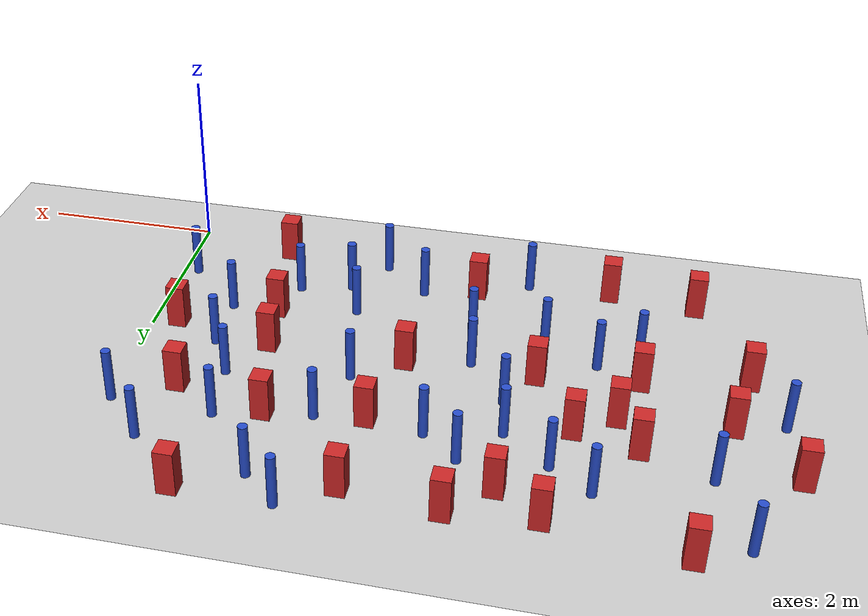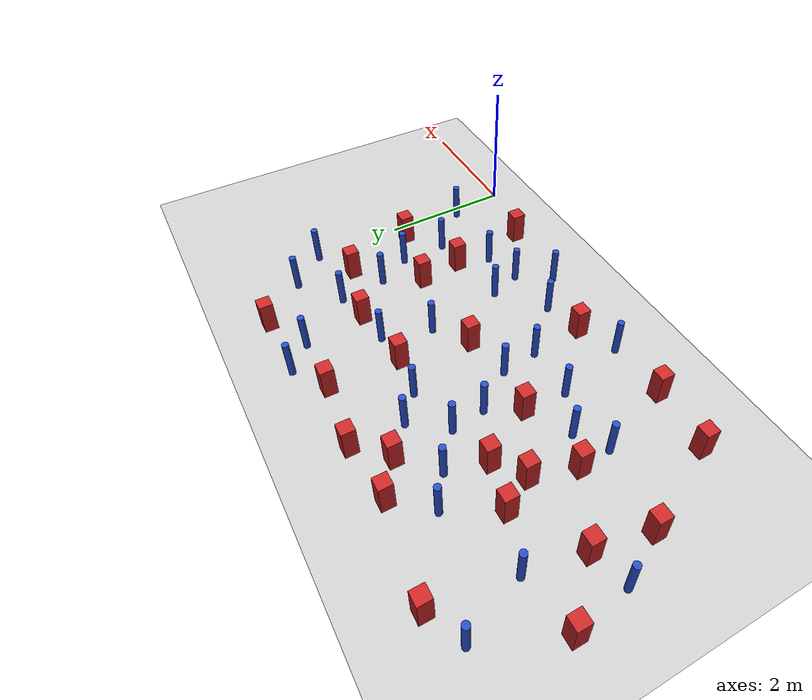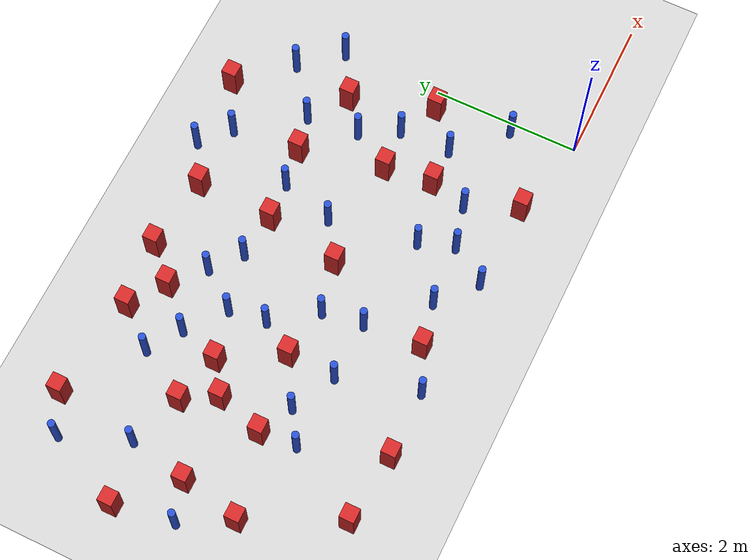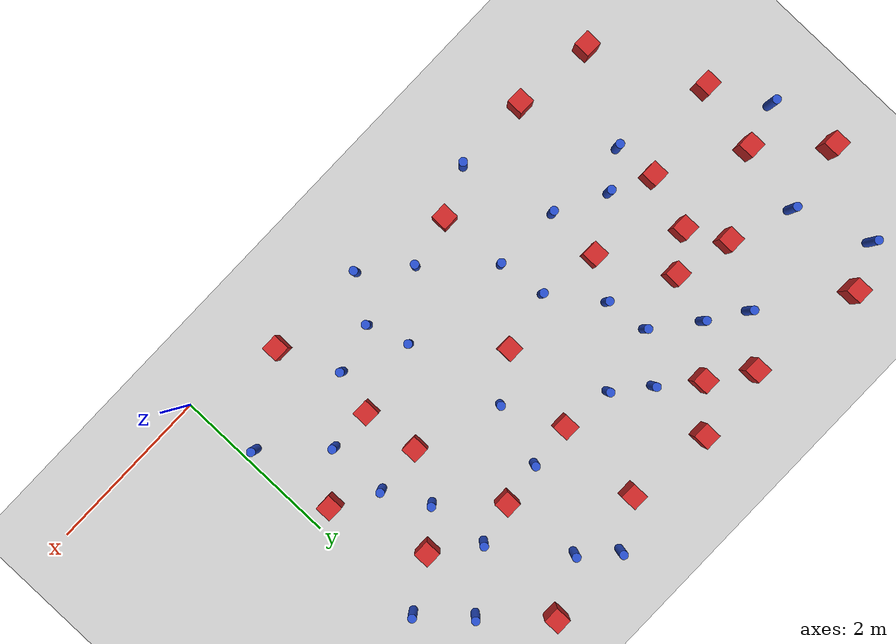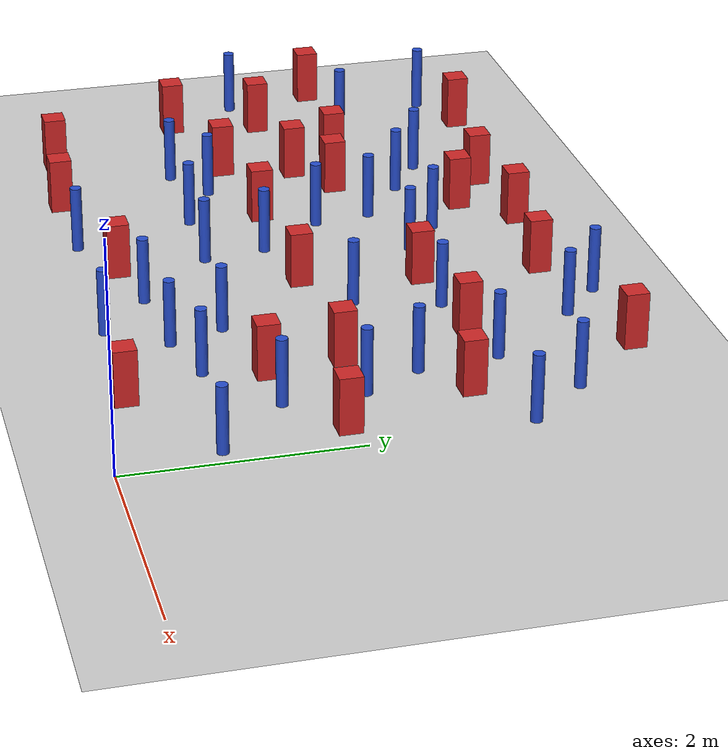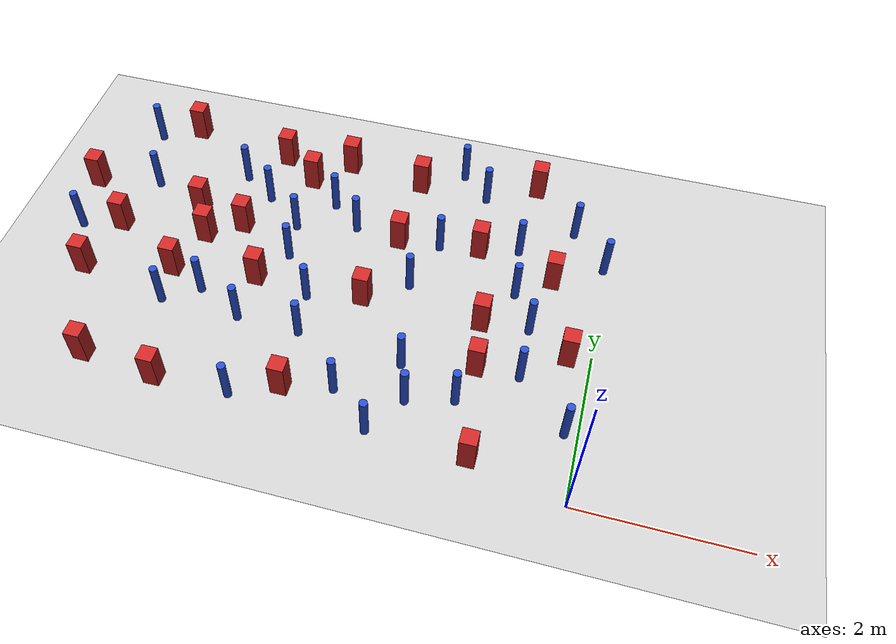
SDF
<sdf version="1.6">
 <world name="default">
  <model name="ground_plane">
   <static>1</static>
   <link name="link">
    <collision name="collision">
     <geometry><plane><normal>0 0 1</normal><size>100 100</size></plane></geometry>
     <surface><friction><ode><mu>100</mu><mu2>50</mu2></ode></friction></surface>
    </collision>
    <visual name="visual">
     <cast_shadows>0</cast_shadows>
     <geometry><plane><normal>0 0 1</normal><size>100 100</size></plane></geometry>
     <material>
      <ambient>1.0 1.0 1.0 1.0</ambient>
      <diffuse>0.8 0.8 0.8 1.0</diffuse>
      <specular>0.01 0.01 0.01 1.000000</specular>
     </material>
    </visual>
   </link>
  </model>
  <model name="pole_obstacle0">
   <static>true</static>
   <pose>-3.31218589467 3.24684789584 7.38925637345e-09 -8.47170692798e-08 1.24976764939e-08 -1.74513093025e-07</pose>
   <link name="link">
    <pose>0 0 0.3 0 -0 0</pose>
    <inertial>
     <mass>1</mass>
     <inertia><ixx>0.145833</ixx><ixy>0</ixy><ixz>0</ixz><iyy>0.145833</iyy><iyz>0</iyz><izz>0.125</izz></inertia>
    </inertial>
    <collision name="collision">
     <geometry><cylinder><radius>0.05</radius><length>.6</length></cylinder></geometry>
    </collision>
    <visual name="visual">
     <geometry><cylinder><radius>0.05</radius><length>.6</length></cylinder></geometry>
     <material>
      <script><name>Gazebo/Blue</name><uri>file://media/materials/scripts/gazebo.material</uri></script>
     </material>
    </visual>
   </link>
  </model>
  <model name="square_post_obstacle2">
   <static>true</static>
   <pose>-4.12529514285 3.92472908485 1.91545236811e-07 -7.35059704564e-06 1.12565212e-07 2.39332434364e-05</pose>
   <link name="link">
    <pose>0 0 0.25 0 -0 0</pose>
    <inertial>
     <mass>100</mass>
     <inertia>
      <ixx>0.166667</ixx>
      <ixy>0</ixy>
      <ixz>0</ixz>
      <iyy>0.166667</iyy>
      <iyz>0</iyz>
      <izz>0.166667</izz>
     </inertia>
    </inertial>
    <collision name="collision"><geometry><box><size>.2 .2 .5</size></box></geometry></collision>
    <visual name="visual">
     <geometry><box><size>.2 .2 .5</size></box></geometry>
     <material>
      <script><name>Gazebo/Red</name><uri>file://media/materials/scripts/gazebo.material</uri></script>
     </material>
    </visual>
   </link>
  </model>
  <model name="pole_obstacle9">
   <static>true</static>
   <pose>-2.39047537825 2.48837726105 7.38925637345e-09 -8.47170692798e-08 1.24976764939e-08 -1.74513093025e-07</pose>
   <link name="link">
    <pose>0 0 0.3 0 -0 0</pose>
    <inertial>
     <mass>1</mass>
     <inertia><ixx>0.145833</ixx><ixy>0</ixy><ixz>0</ixz><iyy>0.145833</iyy><iyz>0</iyz><izz>0.125</izz></inertia>
    </inertial>
    <collision name="collision">
     <geometry><cylinder><radius>0.05</radius><length>.6</length></cylinder></geometry>
    </collision>
    <visual name="visual">
     <geometry><cylinder><radius>0.05</radius><length>.6</length></cylinder></geometry>
     <material>
      <script><name>Gazebo/Blue</name><uri>file://media/materials/scripts/gazebo.material</uri></script>
     </material>
    </visual>
   </link>
  </model>
  <model name="pole_obstacle16">
   <static>true</static>
   <pose>-2.01565378266 0.821097180854 7.38925637345e-09 -8.47170692799e-08 1.2497676506e-08 -1.74513093019e-07</pose>
   <link name="link">
    <pose>0 0 0.3 0 -0 0</pose>
    <inertial>
     <mass>1</mass>
     <inertia><ixx>0.145833</ixx><ixy>0</ixy><ixz>0</ixz><iyy>0.145833</iyy><iyz>0</iyz><izz>0.125</izz></inertia>
    </inertial>
    <collision name="collision">
     <geometry><cylinder><radius>0.05</radius><length>.6</length></cylinder></geometry>
    </collision>
    <visual name="visual">
     <geometry><cylinder><radius>0.05</radius><length>.6</length></cylinder></geometry>
     <material>
      <script><name>Gazebo/Blue</name><uri>file://media/materials/scripts/gazebo.material</uri></script>
     </material>
    </visual>
   </link>
  </model>
  <model name="square_post_obstacle31">
   <static>true</static>
   <pose>-4.93894189318 0.361426114888 1.91545236811e-07 -7.35059704564e-06 1.12565212e-07 2.39332434364e-05</pose>
   <link name="link">
    <pose>0 0 0.25 0 -0 0</pose>
    <inertial>
     <mass>100</mass>
     <inertia>
      <ixx>0.166667</ixx>
      <ixy>0</ixy>
      <ixz>0</ixz>
      <iyy>0.166667</iyy>
      <iyz>0</iyz>
      <izz>0.166667</izz>
     </inertia>
    </inertial>
    <collision name="collision"><geometry><box><size>.2 .2 .5</size></box></geometry></collision>
    <visual name="visual">
     <geometry><box><size>.2 .2 .5</size></box></geometry>
     <material>
      <script><name>Gazebo/Red</name><uri>file://media/materials/scripts/gazebo.material</uri></script>
     </material>
    </visual>
   </link>
  </model>
  <model name="pole_obstacle29">
   <static>true</static>
   <pose>-1.16174425688 3.40581016693 7.38925637345e-09 -8.47170692799e-08 1.24976765053e-08 -1.74513093017e-07</pose>
   <link name="link">
    <pose>0 0 0.3 0 -0 0</pose>
    <inertial>
     <mass>1</mass>
     <inertia><ixx>0.145833</ixx><ixy>0</ixy><ixz>0</ixz><iyy>0.145833</iyy><iyz>0</iyz><izz>0.125</izz></inertia>
    </inertial>
    <collision name="collision">
     <geometry><cylinder><radius>0.05</radius><length>.6</length></cylinder></geometry>
    </collision>
    <visual name="visual">
     <geometry><cylinder><radius>0.05</radius><length>.6</length></cylinder></geometry>
     <material>
      <script><name>Gazebo/Blue</name><uri>file://media/materials/scripts/gazebo.material</uri></script>
     </material>
    </visual>
   </link>
  </model>
  <model name="square_post_obstacle35">
   <static>true</static>
   <pose>-4.29749711963 2.10188516011 1.91545236811e-07 -7.35059704564e-06 1.12565212e-07 2.39332434364e-05</pose>
   <link name="link">
    <pose>0 0 0.25 0 -0 0</pose>
    <inertial>
     <mass>100</mass>
     <inertia>
      <ixx>0.166667</ixx>
      <ixy>0</ixy>
      <ixz>0</ixz>
      <iyy>0.166667</iyy>
      <iyz>0</iyz>
      <izz>0.166667</izz>
     </inertia>
    </inertial>
    <collision name="collision"><geometry><box><size>.2 .2 .5</size></box></geometry></collision>
    <visual name="visual">
     <geometry><box><size>.2 .2 .5</size></box></geometry>
     <material>
      <script><name>Gazebo/Red</name><uri>file://media/materials/scripts/gazebo.material</uri></script>
     </material>
    </visual>
   </link>
  </model>
  <model name="pole_obstacle35">
   <static>true</static>
   <pose>-4.01944956505 0.370671614496 7.38925637345e-09 -8.47170692799e-08 1.24976765016e-08 -1.74513093019e-07</pose>
   <link name="link">
    <pose>0 0 0.3 0 -0 0</pose>
    <inertial>
     <mass>1</mass>
     <inertia><ixx>0.145833</ixx><ixy>0</ixy><ixz>0</ixz><iyy>0.145833</iyy><iyz>0</iyz><izz>0.125</izz></inertia>
    </inertial>
    <collision name="collision">
     <geometry><cylinder><radius>0.05</radius><length>.6</length></cylinder></geometry>
    </collision>
    <visual name="visual">
     <geometry><cylinder><radius>0.05</radius><length>.6</length></cylinder></geometry>
     <material>
      <script><name>Gazebo/Blue</name><uri>file://media/materials/scripts/gazebo.material</uri></script>
     </material>
    </visual>
   </link>
  </model>
  <model name="pole_obstacle37">
   <static>true</static>
   <pose>-3.59396829562 1.98259510456 7.38925637345e-09 -8.47170692799e-08 1.24976764986e-08 -1.74513093023e-07</pose>
   <link name="link">
    <pose>0 0 0.3 0 -0 0</pose>
    <inertial>
     <mass>1</mass>
     <inertia><ixx>0.145833</ixx><ixy>0</ixy><ixz>0</ixz><iyy>0.145833</iyy><iyz>0</iyz><izz>0.125</izz></inertia>
    </inertial>
    <collision name="collision">
     <geometry><cylinder><radius>0.05</radius><length>.6</length></cylinder></geometry>
    </collision>
    <visual name="visual">
     <geometry><cylinder><radius>0.05</radius><length>.6</length></cylinder></geometry>
     <material>
      <script><name>Gazebo/Blue</name><uri>file://media/materials/scripts/gazebo.material</uri></script>
     </material>
    </visual>
   </link>
  </model>
  <model name="square_post_obstacle38">
   <static>true</static>
   <pose>-5.18107999283 2.6121680346 1.91545236811e-07 -7.35059704564e-06 1.12565212e-07 2.39332434364e-05</pose>
   <link name="link">
    <pose>0 0 0.25 0 -0 0</pose>
    <inertial>
     <mass>100</mass>
     <inertia>
      <ixx>0.166667</ixx>
      <ixy>0</ixy>
      <ixz>0</ixz>
      <iyy>0.166667</iyy>
      <iyz>0</iyz>
      <izz>0.166667</izz>
     </inertia>
    </inertial>
    <collision name="collision"><geometry><box><size>.2 .2 .5</size></box></geometry></collision>
    <visual name="visual">
     <geometry><box><size>.2 .2 .5</size></box></geometry>
     <material>
      <script><name>Gazebo/Red</name><uri>file://media/materials/scripts/gazebo.material</uri></script>
     </material>
    </visual>
   </link>
  </model>
  <model name="square_post_obstacle43">
   <static>true</static>
   <pose>-1.66188375702 3.28541708016 1.91545236811e-07 -7.35059704564e-06 1.12565212e-07 2.39332434364e-05</pose>
   <link name="link">
    <pose>0 0 0.25 0 -0 0</pose>
    <inertial>
     <mass>100</mass>
     <inertia>
      <ixx>0.166667</ixx>
      <ixy>0</ixy>
      <ixz>0</ixz>
      <iyy>0.166667</iyy>
      <iyz>0</iyz>
      <izz>0.166667</izz>
     </inertia>
    </inertial>
    <collision name="collision"><geometry><box><size>.2 .2 .5</size></box></geometry></collision>
    <visual name="visual">
     <geometry><box><size>.2 .2 .5</size></box></geometry>
     <material>
      <script><name>Gazebo/Red</name><uri>file://media/materials/scripts/gazebo.material</uri></script>
     </material>
    </visual>
   </link>
  </model>
  <model name="pole_obstacle47">
   <static>true</static>
   <pose>-1.76505817171 4.21186184875 7.38925637345e-09 -8.47170692799e-08 1.24976765033e-08 -1.74513093018e-07</pose>
   <link name="link">
    <pose>0 0 0.3 0 -0 0</pose>
    <inertial>
     <mass>1</mass>
     <inertia><ixx>0.145833</ixx><ixy>0</ixy><ixz>0</ixz><iyy>0.145833</iyy><iyz>0</iyz><izz>0.125</izz></inertia>
    </inertial>
    <collision name="collision">
     <geometry><cylinder><radius>0.05</radius><length>.6</length></cylinder></geometry>
    </collision>
    <visual name="visual">
     <geometry><cylinder><radius>0.05</radius><length>.6</length></cylinder></geometry>
     <material>
      <script><name>Gazebo/Blue</name><uri>file://media/materials/scripts/gazebo.material</uri></script>
     </material>
    </visual>
   </link>
  </model>
  <model name="square_post_obstacle49">
   <static>true</static>
   <pose>-4.59974025858 4.25674580251 1.91545236811e-07 -7.35059704564e-06 1.12565212e-07 2.39332434364e-05</pose>
   <link name="link">
    <pose>0 0 0.25 0 -0 0</pose>
    <inertial>
     <mass>100</mass>
     <inertia>
      <ixx>0.166667</ixx>
      <ixy>0</ixy>
      <ixz>0</ixz>
      <iyy>0.166667</iyy>
      <iyz>0</iyz>
      <izz>0.166667</izz>
     </inertia>
    </inertial>
    <collision name="collision"><geometry><box><size>.2 .2 .5</size></box></geometry></collision>
    <visual name="visual">
     <geometry><box><size>.2 .2 .5</size></box></geometry>
     <material>
      <script><name>Gazebo/Red</name><uri>file://media/materials/scripts/gazebo.material</uri></script>
     </material>
    </visual>
   </link>
  </model>
  <model name="square_post_obstacle51">
   <static>true</static>
   <pose>-3.45675100324 0.629196716824 1.91545236811e-07 -7.35059704564e-06 1.12565212e-07 2.39332434364e-05</pose>
   <link name="link">
    <pose>0 0 0.25 0 -0 0</pose>
    <inertial>
     <mass>100</mass>
     <inertia>
      <ixx>0.166667</ixx>
      <ixy>0</ixy>
      <ixz>0</ixz>
      <iyy>0.166667</iyy>
      <iyz>0</iyz>
      <izz>0.166667</izz>
     </inertia>
    </inertial>
    <collision name="collision"><geometry><box><size>.2 .2 .5</size></box></geometry></collision>
    <visual name="visual">
     <geometry><box><size>.2 .2 .5</size></box></geometry>
     <material>
      <script><name>Gazebo/Red</name><uri>file://media/materials/scripts/gazebo.material</uri></script>
     </material>
    </visual>
   </link>
  </model>
  <model name="pole_obstacle51">
   <static>true</static>
   <pose>-4.31526105407 1.44752254884 7.38925637345e-09 -8.471706928e-08 1.24976765134e-08 -1.74513093015e-07</pose>
   <link name="link">
    <pose>0 0 0.3 0 -0 0</pose>
    <inertial>
     <mass>1</mass>
     <inertia><ixx>0.145833</ixx><ixy>0</ixy><ixz>0</ixz><iyy>0.145833</iyy><iyz>0</iyz><izz>0.125</izz></inertia>
    </inertial>
    <collision name="collision">
     <geometry><cylinder><radius>0.05</radius><length>.6</length></cylinder></geometry>
    </collision>
    <visual name="visual">
     <geometry><cylinder><radius>0.05</radius><length>.6</length></cylinder></geometry>
     <material>
      <script><name>Gazebo/Blue</name><uri>file://media/materials/scripts/gazebo.material</uri></script>
     </material>
    </visual>
   </link>
  </model>
  <model name="pole_obstacle52">
   <static>true</static>
   <pose>-2.17546158539 3.21325992226 7.38925637345e-09 -8.47170692798e-08 1.24976764939e-08 -1.74513093025e-07</pose>
   <link name="link">
    <pose>0 0 0.3 0 -0 0</pose>
    <inertial>
     <mass>1</mass>
     <inertia><ixx>0.145833</ixx><ixy>0</ixy><ixz>0</ixz><iyy>0.145833</iyy><iyz>0</iyz><izz>0.125</izz></inertia>
    </inertial>
    <collision name="collision">
     <geometry><cylinder><radius>0.05</radius><length>.6</length></cylinder></geometry>
    </collision>
    <visual name="visual">
     <geometry><cylinder><radius>0.05</radius><length>.6</length></cylinder></geometry>
     <material>
      <script><name>Gazebo/Blue</name><uri>file://media/materials/scripts/gazebo.material</uri></script>
     </material>
    </visual>
   </link>
  </model>
  <model name="pole_obstacle57">
   <static>true</static>
   <pose>-4.02045825961 2.5595097581 7.38925637345e-09 -8.47170692798e-08 1.24976764953e-08 -1.74513093023e-07</pose>
   <link name="link">
    <pose>0 0 0.3 0 -0 0</pose>
    <inertial>
     <mass>1</mass>
     <inertia><ixx>0.145833</ixx><ixy>0</ixy><ixz>0</ixz><iyy>0.145833</iyy><iyz>0</iyz><izz>0.125</izz></inertia>
    </inertial>
    <collision name="collision">
     <geometry><cylinder><radius>0.05</radius><length>.6</length></cylinder></geometry>
    </collision>
    <visual name="visual">
     <geometry><cylinder><radius>0.05</radius><length>.6</length></cylinder></geometry>
     <material>
      <script><name>Gazebo/Blue</name><uri>file://media/materials/scripts/gazebo.material</uri></script>
     </material>
    </visual>
   </link>
  </model>
  <model name="pole_obstacle58">
   <static>true</static>
   <pose>-6.50624612397 4.21218986846 7.38925637345e-09 -8.47170692796e-08 1.24976764786e-08 -1.74513093032e-07</pose>
   <link name="link">
    <pose>0 0 0.3 0 -0 0</pose>
    <inertial>
     <mass>1</mass>
     <inertia><ixx>0.145833</ixx><ixy>0</ixy><ixz>0</ixz><iyy>0.145833</iyy><iyz>0</iyz><izz>0.125</izz></inertia>
    </inertial>
    <collision name="collision">
     <geometry><cylinder><radius>0.05</radius><length>.6</length></cylinder></geometry>
    </collision>
    <visual name="visual">
     <geometry><cylinder><radius>0.05</radius><length>.6</length></cylinder></geometry>
     <material>
      <script><name>Gazebo/Blue</name><uri>file://media/materials/scripts/gazebo.material</uri></script>
     </material>
    </visual>
   </link>
  </model>
  <model name="square_post_obstacle65">
   <static>true</static>
   <pose>-2.67300093163 4.2290771013 1.91545236811e-07 -7.35059704564e-06 1.12565212e-07 2.39332434364e-05</pose>
   <link name="link">
    <pose>0 0 0.25 0 -0 0</pose>
    <inertial>
     <mass>100</mass>
     <inertia>
      <ixx>0.166667</ixx>
      <ixy>0</ixy>
      <ixz>0</ixz>
      <iyy>0.166667</iyy>
      <iyz>0</iyz>
      <izz>0.166667</izz>
     </inertia>
    </inertial>
    <collision name="collision"><geometry><box><size>.2 .2 .5</size></box></geometry></collision>
    <visual name="visual">
     <geometry><box><size>.2 .2 .5</size></box></geometry>
     <material>
      <script><name>Gazebo/Red</name><uri>file://media/materials/scripts/gazebo.material</uri></script>
     </material>
    </visual>
   </link>
  </model>
  <model name="square_post_obstacle68">
   <static>true</static>
   <pose>-6.98262836582 3.17246961857 1.91545236811e-07 -7.35059704564e-06 1.12565212e-07 2.39332434364e-05</pose>
   <link name="link">
    <pose>0 0 0.25 0 -0 0</pose>
    <inertial>
     <mass>100</mass>
     <inertia>
      <ixx>0.166667</ixx>
      <ixy>0</ixy>
      <ixz>0</ixz>
      <iyy>0.166667</iyy>
      <iyz>0</iyz>
      <izz>0.166667</izz>
     </inertia>
    </inertial>
    <collision name="collision"><geometry><box><size>.2 .2 .5</size></box></geometry></collision>
    <visual name="visual">
     <geometry><box><size>.2 .2 .5</size></box></geometry>
     <material>
      <script><name>Gazebo/Red</name><uri>file://media/materials/scripts/gazebo.material</uri></script>
     </material>
    </visual>
   </link>
  </model>
  <model name="pole_obstacle76">
   <static>true</static>
   <pose>-3.69954397331 3.56758947971 7.38925637345e-09 -8.47170692798e-08 1.24976764939e-08 -1.74513093025e-07</pose>
   <link name="link">
    <pose>0 0 0.3 0 -0 0</pose>
    <inertial>
     <mass>1</mass>
     <inertia><ixx>0.145833</ixx><ixy>0</ixy><ixz>0</ixz><iyy>0.145833</iyy><iyz>0</iyz><izz>0.125</izz></inertia>
    </inertial>
    <collision name="collision">
     <geometry><cylinder><radius>0.05</radius><length>.6</length></cylinder></geometry>
    </collision>
    <visual name="visual">
     <geometry><cylinder><radius>0.05</radius><length>.6</length></cylinder></geometry>
     <material>
      <script><name>Gazebo/Blue</name><uri>file://media/materials/scripts/gazebo.material</uri></script>
     </material>
    </visual>
   </link>
  </model>
  <model name="pole_obstacle78">
   <static>true</static>
   <pose>-4.90975450188 1.74306706423 7.38925637345e-09 -8.471706928e-08 1.24976765134e-08 -1.74513093015e-07</pose>
   <link name="link">
    <pose>0 0 0.3 0 -0 0</pose>
    <inertial>
     <mass>1</mass>
     <inertia><ixx>0.145833</ixx><ixy>0</ixy><ixz>0</ixz><iyy>0.145833</iyy><iyz>0</iyz><izz>0.125</izz></inertia>
    </inertial>
    <collision name="collision">
     <geometry><cylinder><radius>0.05</radius><length>.6</length></cylinder></geometry>
    </collision>
    <visual name="visual">
     <geometry><cylinder><radius>0.05</radius><length>.6</length></cylinder></geometry>
     <material>
      <script><name>Gazebo/Blue</name><uri>file://media/materials/scripts/gazebo.material</uri></script>
     </material>
    </visual>
   </link>
  </model>
  <model name="pole_obstacle99">
   <static>true</static>
   <pose>-1.44975301451 0.973764844431 7.38925637345e-09 -8.47170692799e-08 1.24976765135e-08 -1.74513093013e-07</pose>
   <link name="link">
    <pose>0 0 0.3 0 -0 0</pose>
    <inertial>
     <mass>1</mass>
     <inertia><ixx>0.145833</ixx><ixy>0</ixy><ixz>0</ixz><iyy>0.145833</iyy><iyz>0</iyz><izz>0.125</izz></inertia>
    </inertial>
    <collision name="collision">
     <geometry><cylinder><radius>0.05</radius><length>.6</length></cylinder></geometry>
    </collision>
    <visual name="visual">
     <geometry><cylinder><radius>0.05</radius><length>.6</length></cylinder></geometry>
     <material>
      <script><name>Gazebo/Blue</name><uri>file://media/materials/scripts/gazebo.material</uri></script>
     </material>
    </visual>
   </link>
  </model>
  <model name="pole_obstacle101">
   <static>true</static>
   <pose>-6.84942148549 2.36285147451 7.38925637345e-09 -8.47170692798e-08 1.24976764937e-08 -1.74513093023e-07</pose>
   <link name="link">
    <pose>0 0 0.3 0 -0 0</pose>
    <inertial>
     <mass>1</mass>
     <inertia><ixx>0.145833</ixx><ixy>0</ixy><ixz>0</ixz><iyy>0.145833</iyy><iyz>0</iyz><izz>0.125</izz></inertia>
    </inertial>
    <collision name="collision">
     <geometry><cylinder><radius>0.05</radius><length>.6</length></cylinder></geometry>
    </collision>
    <visual name="visual">
     <geometry><cylinder><radius>0.05</radius><length>.6</length></cylinder></geometry>
     <material>
      <script><name>Gazebo/Blue</name><uri>file://media/materials/scripts/gazebo.material</uri></script>
     </material>
    </visual>
   </link>
  </model>
  <model name="square_post_obstacle90">
   <static>true</static>
   <pose>-1.3163284029 1.48304665681 1.91545236811e-07 -7.35059704564e-06 1.12565212e-07 2.39332434364e-05</pose>
   <link name="link">
    <pose>0 0 0.25 0 -0 0</pose>
    <inertial>
     <mass>100</mass>
     <inertia>
      <ixx>0.166667</ixx>
      <ixy>0</ixy>
      <ixz>0</ixz>
      <iyy>0.166667</iyy>
      <iyz>0</iyz>
      <izz>0.166667</izz>
     </inertia>
    </inertial>
    <collision name="collision"><geometry><box><size>.2 .2 .5</size></box></geometry></collision>
    <visual name="visual">
     <geometry><box><size>.2 .2 .5</size></box></geometry>
     <material>
      <script><name>Gazebo/Red</name><uri>file://media/materials/scripts/gazebo.material</uri></script>
     </material>
    </visual>
   </link>
  </model>
  <model name="pole_obstacle102">
   <static>true</static>
   <pose>-2.85381485878 0.756122292295 7.38925637345e-09 -8.471706928e-08 1.24976765177e-08 -1.74513093012e-07</pose>
   <link name="link">
    <pose>0 0 0.3 0 -0 0</pose>
    <inertial>
     <mass>1</mass>
     <inertia><ixx>0.145833</ixx><ixy>0</ixy><ixz>0</ixz><iyy>0.145833</iyy><iyz>0</iyz><izz>0.125</izz></inertia>
    </inertial>
    <collision name="collision">
     <geometry><cylinder><radius>0.05</radius><length>.6</length></cylinder></geometry>
    </collision>
    <visual name="visual">
     <geometry><cylinder><radius>0.05</radius><length>.6</length></cylinder></geometry>
     <material>
      <script><name>Gazebo/Blue</name><uri>file://media/materials/scripts/gazebo.material</uri></script>
     </material>
    </visual>
   </link>
  </model>
  <model name="pole_obstacle109">
   <static>true</static>
   <pose>-3.51550857956 1.42597080293 7.38925637345e-09 -8.471706928e-08 1.24976765152e-08 -1.74513093012e-07</pose>
   <link name="link">
    <pose>0 0 0.3 0 -0 0</pose>
    <inertial>
     <mass>1</mass>
     <inertia><ixx>0.145833</ixx><ixy>0</ixy><ixz>0</ixz><iyy>0.145833</iyy><iyz>0</iyz><izz>0.125</izz></inertia>
    </inertial>
    <collision name="collision">
     <geometry><cylinder><radius>0.05</radius><length>.6</length></cylinder></geometry>
    </collision>
    <visual name="visual">
     <geometry><cylinder><radius>0.05</radius><length>.6</length></cylinder></geometry>
     <material>
      <script><name>Gazebo/Blue</name><uri>file://media/materials/scripts/gazebo.material</uri></script>
     </material>
    </visual>
   </link>
  </model>
  <model name="square_post_obstacle111">
   <static>true</static>
   <pose>-5.98699261647 4.45297069431 1.91545236811e-07 -7.35059704564e-06 1.12565212e-07 2.39332434364e-05</pose>
   <link name="link">
    <pose>0 0 0.25 0 -0 0</pose>
    <inertial>
     <mass>100</mass>
     <inertia>
      <ixx>0.166667</ixx>
      <ixy>0</ixy>
      <ixz>0</ixz>
      <iyy>0.166667</iyy>
      <iyz>0</iyz>
      <izz>0.166667</izz>
     </inertia>
    </inertial>
    <collision name="collision"><geometry><box><size>.2 .2 .5</size></box></geometry></collision>
    <visual name="visual">
     <geometry><box><size>.2 .2 .5</size></box></geometry>
     <material>
      <script><name>Gazebo/Red</name><uri>file://media/materials/scripts/gazebo.material</uri></script>
     </material>
    </visual>
   </link>
  </model>
  <model name="pole_obstacle127">
   <static>true</static>
   <pose>-2.13743569554 4.56355091581 7.38925637345e-09 -8.47170692798e-08 1.24976765033e-08 -1.74513093019e-07</pose>
   <link name="link">
    <pose>0 0 0.3 0 -0 0</pose>
    <inertial>
     <mass>1</mass>
     <inertia><ixx>0.145833</ixx><ixy>0</ixy><ixz>0</ixz><iyy>0.145833</iyy><iyz>0</iyz><izz>0.125</izz></inertia>
    </inertial>
    <collision name="collision">
     <geometry><cylinder><radius>0.05</radius><length>.6</length></cylinder></geometry>
    </collision>
    <visual name="visual">
     <geometry><cylinder><radius>0.05</radius><length>.6</length></cylinder></geometry>
     <material>
      <script><name>Gazebo/Blue</name><uri>file://media/materials/scripts/gazebo.material</uri></script>
     </material>
    </visual>
   </link>
  </model>
  <model name="pole_obstacle129">
   <static>true</static>
   <pose>-5.02921000527 3.76014652618 7.38925637345e-09 -8.47170692798e-08 1.24976764937e-08 -1.74513093023e-07</pose>
   <link name="link">
    <pose>0 0 0.3 0 -0 0</pose>
    <inertial>
     <mass>1</mass>
     <inertia><ixx>0.145833</ixx><ixy>0</ixy><ixz>0</ixz><iyy>0.145833</iyy><iyz>0</iyz><izz>0.125</izz></inertia>
    </inertial>
    <collision name="collision">
     <geometry><cylinder><radius>0.05</radius><length>.6</length></cylinder></geometry>
    </collision>
    <visual name="visual">
     <geometry><cylinder><radius>0.05</radius><length>.6</length></cylinder></geometry>
     <material>
      <script><name>Gazebo/Blue</name><uri>file://media/materials/scripts/gazebo.material</uri></script>
     </material>
    </visual>
   </link>
  </model>
  <model name="pole_obstacle132">
   <static>true</static>
   <pose>-0.51529237602 3.89503326741 7.38925637345e-09 -8.47170692799e-08 1.24976765084e-08 -1.74513093016e-07</pose>
   <link name="link">
    <pose>0 0 0.3 0 -0 0</pose>
    <inertial>
     <mass>1</mass>
     <inertia><ixx>0.145833</ixx><ixy>0</ixy><ixz>0</ixz><iyy>0.145833</iyy><iyz>0</iyz><izz>0.125</izz></inertia>
    </inertial>
    <collision name="collision">
     <geometry><cylinder><radius>0.05</radius><length>.6</length></cylinder></geometry>
    </collision>
    <visual name="visual">
     <geometry><cylinder><radius>0.05</radius><length>.6</length></cylinder></geometry>
     <material>
      <script><name>Gazebo/Blue</name><uri>file://media/materials/scripts/gazebo.material</uri></script>
     </material>
    </visual>
   </link>
  </model>
  <model name="square_post_obstacle120">
   <static>true</static>
   <pose>-1.39707573347 2.14126951915 1.91545236811e-07 -7.35059704564e-06 1.12565212e-07 2.39332434364e-05</pose>
   <link name="link">
    <pose>0 0 0.25 0 -0 0</pose>
    <inertial>
     <mass>100</mass>
     <inertia>
      <ixx>0.166667</ixx>
      <ixy>0</ixy>
      <ixz>0</ixz>
      <iyy>0.166667</iyy>
      <iyz>0</iyz>
      <izz>0.166667</izz>
     </inertia>
    </inertial>
    <collision name="collision"><geometry><box><size>.2 .2 .5</size></box></geometry></collision>
    <visual name="visual">
     <geometry><box><size>.2 .2 .5</size></box></geometry>
     <material>
      <script><name>Gazebo/Red</name><uri>file://media/materials/scripts/gazebo.material</uri></script>
     </material>
    </visual>
   </link>
  </model>
  <model name="pole_obstacle139">
   <static>true</static>
   <pose>-2.18073167716 1.29737409908 7.38925637345e-09 -8.471706928e-08 1.24976765152e-08 -1.74513093012e-07</pose>
   <link name="link">
    <pose>0 0 0.3 0 -0 0</pose>
    <inertial>
     <mass>1</mass>
     <inertia><ixx>0.145833</ixx><ixy>0</ixy><ixz>0</ixz><iyy>0.145833</iyy><iyz>0</iyz><izz>0.125</izz></inertia>
    </inertial>
    <collision name="collision">
     <geometry><cylinder><radius>0.05</radius><length>.6</length></cylinder></geometry>
    </collision>
    <visual name="visual">
     <geometry><cylinder><radius>0.05</radius><length>.6</length></cylinder></geometry>
     <material>
      <script><name>Gazebo/Blue</name><uri>file://media/materials/scripts/gazebo.material</uri></script>
     </material>
    </visual>
   </link>
  </model>
  <model name="pole_obstacle141">
   <static>true</static>
   <pose>-5.33338405648 1.46738761831 7.38925637345e-09 -8.471706928e-08 1.24976765134e-08 -1.74513093015e-07</pose>
   <link name="link">
    <pose>0 0 0.3 0 -0 0</pose>
    <inertial>
     <mass>1</mass>
     <inertia><ixx>0.145833</ixx><ixy>0</ixy><ixz>0</ixz><iyy>0.145833</iyy><iyz>0</iyz><izz>0.125</izz></inertia>
    </inertial>
    <collision name="collision">
     <geometry><cylinder><radius>0.05</radius><length>.6</length></cylinder></geometry>
    </collision>
    <visual name="visual">
     <geometry><cylinder><radius>0.05</radius><length>.6</length></cylinder></geometry>
     <material>
      <script><name>Gazebo/Blue</name><uri>file://media/materials/scripts/gazebo.material</uri></script>
     </material>
    </visual>
   </link>
  </model>
  <model name="square_post_obstacle128">
   <static>true</static>
   <pose>-4.76322218951 2.9018312932 1.91545236811e-07 -7.35059704564e-06 1.12565212e-07 2.39332434364e-05</pose>
   <link name="link">
    <pose>0 0 0.25 0 -0 0</pose>
    <inertial>
     <mass>100</mass>
     <inertia>
      <ixx>0.166667</ixx>
      <ixy>0</ixy>
      <ixz>0</ixz>
      <iyy>0.166667</iyy>
      <iyz>0</iyz>
      <izz>0.166667</izz>
     </inertia>
    </inertial>
    <collision name="collision"><geometry><box><size>.2 .2 .5</size></box></geometry></collision>
    <visual name="visual">
     <geometry><box><size>.2 .2 .5</size></box></geometry>
     <material>
      <script><name>Gazebo/Red</name><uri>file://media/materials/scripts/gazebo.material</uri></script>
     </material>
    </visual>
   </link>
  </model>
  <model name="square_post_obstacle132">
   <static>true</static>
   <pose>-5.89402770811 0.457642075262 1.91545236811e-07 -7.35059704564e-06 1.12565212e-07 2.39332434364e-05</pose>
   <link name="link">
    <pose>0 0 0.25 0 -0 0</pose>
    <inertial>
     <mass>100</mass>
     <inertia>
      <ixx>0.166667</ixx>
      <ixy>0</ixy>
      <ixz>0</ixz>
      <iyy>0.166667</iyy>
      <iyz>0</iyz>
      <izz>0.166667</izz>
     </inertia>
    </inertial>
    <collision name="collision"><geometry><box><size>.2 .2 .5</size></box></geometry></collision>
    <visual name="visual">
     <geometry><box><size>.2 .2 .5</size></box></geometry>
     <material>
      <script><name>Gazebo/Red</name><uri>file://media/materials/scripts/gazebo.material</uri></script>
     </material>
    </visual>
   </link>
  </model>
  <model name="square_post_obstacle133">
   <static>true</static>
   <pose>-5.37661645428 1.96724134531 1.91545236811e-07 -7.35059704564e-06 1.12565212e-07 2.39332434364e-05</pose>
   <link name="link">
    <pose>0 0 0.25 0 -0 0</pose>
    <inertial>
     <mass>100</mass>
     <inertia>
      <ixx>0.166667</ixx>
      <ixy>0</ixy>
      <ixz>0</ixz>
      <iyy>0.166667</iyy>
      <iyz>0</iyz>
      <izz>0.166667</izz>
     </inertia>
    </inertial>
    <collision name="collision"><geometry><box><size>.2 .2 .5</size></box></geometry></collision>
    <visual name="visual">
     <geometry><box><size>.2 .2 .5</size></box></geometry>
     <material>
      <script><name>Gazebo/Red</name><uri>file://media/materials/scripts/gazebo.material</uri></script>
     </material>
    </visual>
   </link>
  </model>
  <model name="pole_obstacle153">
   <static>true</static>
   <pose>-6.1626516318 3.32530348315 7.38925637345e-09 -8.47170692798e-08 1.24976764937e-08 -1.74513093023e-07</pose>
   <link name="link">
    <pose>0 0 0.3 0 -0 0</pose>
    <inertial>
     <mass>1</mass>
     <inertia><ixx>0.145833</ixx><ixy>0</ixy><ixz>0</ixz><iyy>0.145833</iyy><iyz>0</iyz><izz>0.125</izz></inertia>
    </inertial>
    <collision name="collision">
     <geometry><cylinder><radius>0.05</radius><length>.6</length></cylinder></geometry>
    </collision>
    <visual name="visual">
     <geometry><cylinder><radius>0.05</radius><length>.6</length></cylinder></geometry>
     <material>
      <script><name>Gazebo/Blue</name><uri>file://media/materials/scripts/gazebo.material</uri></script>
     </material>
    </visual>
   </link>
  </model>
  <model name="square_post_obstacle142">
   <static>true</static>
   <pose>-0.663147097845 3.02380123693 1.91545236811e-07 -7.35059704564e-06 1.12565212e-07 2.39332434364e-05</pose>
   <link name="link">
    <pose>0 0 0.25 0 -0 0</pose>
    <inertial>
     <mass>100</mass>
     <inertia>
      <ixx>0.166667</ixx>
      <ixy>0</ixy>
      <ixz>0</ixz>
      <iyy>0.166667</iyy>
      <iyz>0</iyz>
      <izz>0.166667</izz>
     </inertia>
    </inertial>
    <collision name="collision"><geometry><box><size>.2 .2 .5</size></box></geometry></collision>
    <visual name="visual">
     <geometry><box><size>.2 .2 .5</size></box></geometry>
     <material>
      <script><name>Gazebo/Red</name><uri>file://media/materials/scripts/gazebo.material</uri></script>
     </material>
    </visual>
   </link>
  </model>
  <model name="square_post_obstacle147">
   <static>true</static>
   <pose>-1.11771342355 4.55286479417 1.91545236811e-07 -7.35059704564e-06 1.12565212e-07 2.39332434364e-05</pose>
   <link name="link">
    <pose>0 0 0.25 0 -0 0</pose>
    <inertial>
     <mass>100</mass>
     <inertia>
      <ixx>0.166667</ixx>
      <ixy>0</ixy>
      <ixz>0</ixz>
      <iyy>0.166667</iyy>
      <iyz>0</iyz>
      <izz>0.166667</izz>
     </inertia>
    </inertial>
    <collision name="collision"><geometry><box><size>.2 .2 .5</size></box></geometry></collision>
    <visual name="visual">
     <geometry><box><size>.2 .2 .5</size></box></geometry>
     <material>
      <script><name>Gazebo/Red</name><uri>file://media/materials/scripts/gazebo.material</uri></script>
     </material>
    </visual>
   </link>
  </model>
  <model name="pole_obstacle157">
   <static>true</static>
   <pose>-1.07901102831 2.69544332809 7.38925637345e-09 -8.47170692799e-08 1.24976765053e-08 -1.74513093017e-07</pose>
   <link name="link">
    <pose>0 0 0.3 0 -0 0</pose>
    <inertial>
     <mass>1</mass>
     <inertia><ixx>0.145833</ixx><ixy>0</ixy><ixz>0</ixz><iyy>0.145833</iyy><iyz>0</iyz><izz>0.125</izz></inertia>
    </inertial>
    <collision name="collision">
     <geometry><cylinder><radius>0.05</radius><length>.6</length></cylinder></geometry>
    </collision>
    <visual name="visual">
     <geometry><cylinder><radius>0.05</radius><length>.6</length></cylinder></geometry>
     <material>
      <script><name>Gazebo/Blue</name><uri>file://media/materials/scripts/gazebo.material</uri></script>
     </material>
    </visual>
   </link>
  </model>
  <model name="pole_obstacle162">
   <static>true</static>
   <pose>-2.34781535668 0.323703211431 7.38925637345e-09 -8.471706928e-08 1.24976765172e-08 -1.74513093013e-07</pose>
   <link name="link">
    <pose>0 0 0.3 0 -0 0</pose>
    <inertial>
     <mass>1</mass>
     <inertia><ixx>0.145833</ixx><ixy>0</ixy><ixz>0</ixz><iyy>0.145833</iyy><iyz>0</iyz><izz>0.125</izz></inertia>
    </inertial>
    <collision name="collision">
     <geometry><cylinder><radius>0.05</radius><length>.6</length></cylinder></geometry>
    </collision>
    <visual name="visual">
     <geometry><cylinder><radius>0.05</radius><length>.6</length></cylinder></geometry>
     <material>
      <script><name>Gazebo/Blue</name><uri>file://media/materials/scripts/gazebo.material</uri></script>
     </material>
    </visual>
   </link>
  </model>
  <model name="pole_obstacle167">
   <static>true</static>
   <pose>-0.162538215794 0.872491462404 7.38925637345e-09 -8.47170692798e-08 1.24976764943e-08 -1.74513093024e-07</pose>
   <link name="link">
    <pose>0 0 0.3 0 -0 0</pose>
    <inertial>
     <mass>1</mass>
     <inertia><ixx>0.145833</ixx><ixy>0</ixy><ixz>0</ixz><iyy>0.145833</iyy><iyz>0</iyz><izz>0.125</izz></inertia>
    </inertial>
    <collision name="collision">
     <geometry><cylinder><radius>0.05</radius><length>.6</length></cylinder></geometry>
    </collision>
    <visual name="visual">
     <geometry><cylinder><radius>0.05</radius><length>.6</length></cylinder></geometry>
     <material>
      <script><name>Gazebo/Blue</name><uri>file://media/materials/scripts/gazebo.material</uri></script>
     </material>
    </visual>
   </link>
  </model>
  <model name="square_post_obstacle168">
   <static>true</static>
   <pose>-1.1495660533 0.280976164805 1.91545236811e-07 -7.35059704564e-06 1.12565212e-07 2.39332434364e-05</pose>
   <link name="link">
    <pose>0 0 0.25 0 -0 0</pose>
    <inertial>
     <mass>100</mass>
     <inertia>
      <ixx>0.166667</ixx>
      <ixy>0</ixy>
      <ixz>0</ixz>
      <iyy>0.166667</iyy>
      <iyz>0</iyz>
      <izz>0.166667</izz>
     </inertia>
    </inertial>
    <collision name="collision"><geometry><box><size>.2 .2 .5</size></box></geometry></collision>
    <visual name="visual">
     <geometry><box><size>.2 .2 .5</size></box></geometry>
     <material>
      <script><name>Gazebo/Red</name><uri>file://media/materials/scripts/gazebo.material</uri></script>
     </material>
    </visual>
   </link>
  </model>
  <model name="pole_obstacle178">
   <static>true</static>
   <pose>-0.790188279156 1.48893677075 7.38925637345e-09 -8.47170692799e-08 1.24976765033e-08 -1.7451309302e-07</pose>
   <link name="link">
    <pose>0 0 0.3 0 -0 0</pose>
    <inertial>
     <mass>1</mass>
     <inertia><ixx>0.145833</ixx><ixy>0</ixy><ixz>0</ixz><iyy>0.145833</iyy><iyz>0</iyz><izz>0.125</izz></inertia>
    </inertial>
    <collision name="collision">
     <geometry><cylinder><radius>0.05</radius><length>.6</length></cylinder></geometry>
    </collision>
    <visual name="visual">
     <geometry><cylinder><radius>0.05</radius><length>.6</length></cylinder></geometry>
     <material>
      <script><name>Gazebo/Blue</name><uri>file://media/materials/scripts/gazebo.material</uri></script>
     </material>
    </visual>
   </link>
  </model>
  <model name="square_post_obstacle170">
   <static>true</static>
   <pose>-0.291723413549 1.90561655546 1.91545236811e-07 -7.35059704564e-06 1.12565212e-07 2.39332434364e-05</pose>
   <link name="link">
    <pose>0 0 0.25 0 -0 0</pose>
    <inertial>
     <mass>100</mass>
     <inertia>
      <ixx>0.166667</ixx>
      <ixy>0</ixy>
      <ixz>0</ixz>
      <iyy>0.166667</iyy>
      <iyz>0</iyz>
      <izz>0.166667</izz>
     </inertia>
    </inertial>
    <collision name="collision"><geometry><box><size>.2 .2 .5</size></box></geometry></collision>
    <visual name="visual">
     <geometry><box><size>.2 .2 .5</size></box></geometry>
     <material>
      <script><name>Gazebo/Red</name><uri>file://media/materials/scripts/gazebo.material</uri></script>
     </material>
    </visual>
   </link>
  </model>
  <model name="pole_obstacle182">
   <static>true</static>
   <pose>-4.5928247312 3.46579421138 7.38925637345e-09 -8.47170692798e-08 1.24976764937e-08 -1.74513093023e-07</pose>
   <link name="link">
    <pose>0 0 0.3 0 -0 0</pose>
    <inertial>
     <mass>1</mass>
     <inertia><ixx>0.145833</ixx><ixy>0</ixy><ixz>0</ixz><iyy>0.145833</iyy><iyz>0</iyz><izz>0.125</izz></inertia>
    </inertial>
    <collision name="collision">
     <geometry><cylinder><radius>0.05</radius><length>.6</length></cylinder></geometry>
    </collision>
    <visual name="visual">
     <geometry><cylinder><radius>0.05</radius><length>.6</length></cylinder></geometry>
     <material>
      <script><name>Gazebo/Blue</name><uri>file://media/materials/scripts/gazebo.material</uri></script>
     </material>
    </visual>
   </link>
  </model>
  <model name="square_post_obstacle174">
   <static>true</static>
   <pose>-5.43137778894 3.06191760095 1.91545236811e-07 -7.35059704564e-06 1.12565212e-07 2.39332434364e-05</pose>
   <link name="link">
    <pose>0 0 0.25 0 -0 0</pose>
    <inertial>
     <mass>100</mass>
     <inertia>
      <ixx>0.166667</ixx>
      <ixy>0</ixy>
      <ixz>0</ixz>
      <iyy>0.166667</iyy>
      <iyz>0</iyz>
      <izz>0.166667</izz>
     </inertia>
    </inertial>
    <collision name="collision"><geometry><box><size>.2 .2 .5</size></box></geometry></collision>
    <visual name="visual">
     <geometry><box><size>.2 .2 .5</size></box></geometry>
     <material>
      <script><name>Gazebo/Red</name><uri>file://media/materials/scripts/gazebo.material</uri></script>
     </material>
    </visual>
   </link>
  </model>
  <model name="square_post_obstacle176">
   <static>true</static>
   <pose>-6.32848251309 2.51446036704 1.91545236811e-07 -7.35059704564e-06 1.12565212e-07 2.39332434364e-05</pose>
   <link name="link">
    <pose>0 0 0.25 0 -0 0</pose>
    <inertial>
     <mass>100</mass>
     <inertia>
      <ixx>0.166667</ixx>
      <ixy>0</ixy>
      <ixz>0</ixz>
      <iyy>0.166667</iyy>
      <iyz>0</iyz>
      <izz>0.166667</izz>
     </inertia>
    </inertial>
    <collision name="collision"><geometry><box><size>.2 .2 .5</size></box></geometry></collision>
    <visual name="visual">
     <geometry><box><size>.2 .2 .5</size></box></geometry>
     <material>
      <script><name>Gazebo/Red</name><uri>file://media/materials/scripts/gazebo.material</uri></script>
     </material>
    </visual>
   </link>
  </model>
  <model name="square_post_obstacle179">
   <static>true</static>
   <pose>-6.49050074269 1.70450881917 1.91545236811e-07 -7.35059704564e-06 1.12565212e-07 2.39332434364e-05</pose>
   <link name="link">
    <pose>0 0 0.25 0 -0 0</pose>
    <inertial>
     <mass>100</mass>
     <inertia>
      <ixx>0.166667</ixx>
      <ixy>0</ixy>
      <ixz>0</ixz>
      <iyy>0.166667</iyy>
      <iyz>0</iyz>
      <izz>0.166667</izz>
     </inertia>
    </inertial>
    <collision name="collision"><geometry><box><size>.2 .2 .5</size></box></geometry></collision>
    <visual name="visual">
     <geometry><box><size>.2 .2 .5</size></box></geometry>
     <material>
      <script><name>Gazebo/Red</name><uri>file://media/materials/scripts/gazebo.material</uri></script>
     </material>
    </visual>
   </link>
  </model>
  <model name="square_post_obstacle199">
   <static>true</static>
   <pose>-3.69529151033 4.34713038338 1.91545236811e-07 -7.35059704564e-06 1.12565212e-07 2.39332434364e-05</pose>
   <link name="link">
    <pose>0 0 0.25 0 -0 0</pose>
    <inertial>
     <mass>100</mass>
     <inertia>
      <ixx>0.166667</ixx>
      <ixy>0</ixy>
      <ixz>0</ixz>
      <iyy>0.166667</iyy>
      <iyz>0</iyz>
      <izz>0.166667</izz>
     </inertia>
    </inertial>
    <collision name="collision"><geometry><box><size>.2 .2 .5</size></box></geometry></collision>
    <visual name="visual">
     <geometry><box><size>.2 .2 .5</size></box></geometry>
     <material>
      <script><name>Gazebo/Red</name><uri>file://media/materials/scripts/gazebo.material</uri></script>
     </material>
    </visual>
   </link>
  </model>
  <model name="pole_obstacle190">
   <static>true</static>
   <pose>-0.0604125966969 3.37651074943 7.38925637345e-09 -8.47170692793e-08 1.24976764354e-08 -1.74513093044e-07</pose>
   <link name="link">
    <pose>0 0 0.3 0 -0 0</pose>
    <inertial>
     <mass>1</mass>
     <inertia><ixx>0.145833</ixx><ixy>0</ixy><ixz>0</ixz><iyy>0.145833</iyy><iyz>0</iyz><izz>0.125</izz></inertia>
    </inertial>
    <collision name="collision">
     <geometry><cylinder><radius>0.05</radius><length>.6</length></cylinder></geometry>
    </collision>
    <visual name="visual">
     <geometry><cylinder><radius>0.05</radius><length>.6</length></cylinder></geometry>
     <material>
      <script><name>Gazebo/Blue</name><uri>file://media/materials/scripts/gazebo.material</uri></script>
     </material>
    </visual>
   </link>
  </model>
  <model name="pole_obstacle194">
   <static>true</static>
   <pose>-4.09197732897 3.06870486888 7.38925637345e-09 -8.47170692798e-08 1.24976764937e-08 -1.74513093023e-07</pose>
   <link name="link">
    <pose>0 0 0.3 0 -0 0</pose>
    <inertial>
     <mass>1</mass>
     <inertia><ixx>0.145833</ixx><ixy>0</ixy><ixz>0</ixz><iyy>0.145833</iyy><iyz>0</iyz><izz>0.125</izz></inertia>
    </inertial>
    <collision name="collision">
     <geometry><cylinder><radius>0.05</radius><length>.6</length></cylinder></geometry>
    </collision>
    <visual name="visual">
     <geometry><cylinder><radius>0.05</radius><length>.6</length></cylinder></geometry>
     <material>
      <script><name>Gazebo/Blue</name><uri>file://media/materials/scripts/gazebo.material</uri></script>
     </material>
    </visual>
   </link>
  </model>
  <model name="pole_obstacle216">
   <static>true</static>
   <pose>-0.806512557459 2.18923351461 7.38925637345e-09 -8.47170692799e-08 1.2497676509e-08 -1.74513093016e-07</pose>
   <link name="link">
    <pose>0 0 0.3 0 -0 0</pose>
    <inertial>
     <mass>1</mass>
     <inertia><ixx>0.145833</ixx><ixy>0</ixy><ixz>0</ixz><iyy>0.145833</iyy><iyz>0</iyz><izz>0.125</izz></inertia>
    </inertial>
    <collision name="collision">
     <geometry><cylinder><radius>0.05</radius><length>.6</length></cylinder></geometry>
    </collision>
    <visual name="visual">
     <geometry><cylinder><radius>0.05</radius><length>.6</length></cylinder></geometry>
     <material>
      <script><name>Gazebo/Blue</name><uri>file://media/materials/scripts/gazebo.material</uri></script>
     </material>
    </visual>
   </link>
  </model>
  <model name="square_post_obstacle214">
   <static>true</static>
   <pose>-2.9070300352 2.13808998808 1.91545236811e-07 -7.35059704564e-06 1.12565212e-07 2.39332434364e-05</pose>
   <link name="link">
    <pose>0 0 0.25 0 -0 0</pose>
    <inertial>
     <mass>100</mass>
     <inertia>
      <ixx>0.166667</ixx>
      <ixy>0</ixy>
      <ixz>0</ixz>
      <iyy>0.166667</iyy>
      <iyz>0</iyz>
      <izz>0.166667</izz>
     </inertia>
    </inertial>
    <collision name="collision"><geometry><box><size>.2 .2 .5</size></box></geometry></collision>
    <visual name="visual">
     <geometry><box><size>.2 .2 .5</size></box></geometry>
     <material>
      <script><name>Gazebo/Red</name><uri>file://media/materials/scripts/gazebo.material</uri></script>
     </material>
    </visual>
   </link>
  </model>
  <model name="square_post_obstacle221">
   <static>true</static>
   <pose>-2.7086900352 3.16890998808 1.91545236811e-07 -7.35059704564e-06 1.12565212e-07 2.39332434364e-05</pose>
   <link name="link">
    <pose>0 0 0.25 0 -0 0</pose>
    <inertial>
     <mass>100</mass>
     <inertia>
      <ixx>0.166667</ixx>
      <ixy>0</ixy>
      <ixz>0</ixz>
      <iyy>0.166667</iyy>
      <iyz>0</iyz>
      <izz>0.166667</izz>
     </inertia>
    </inertial>
    <collision name="collision"><geometry><box><size>.2 .2 .5</size></box></geometry></collision>
    <visual name="visual">
     <geometry><box><size>.2 .2 .5</size></box></geometry>
     <material>
      <script><name>Gazebo/Red</name><uri>file://media/materials/scripts/gazebo.material</uri></script>
     </material>
    </visual>
   </link>
  </model>
 </world>
</sdf>
